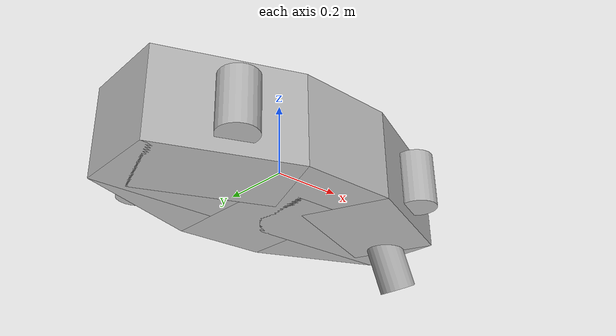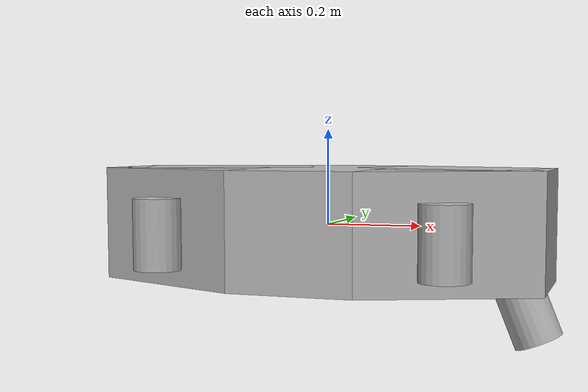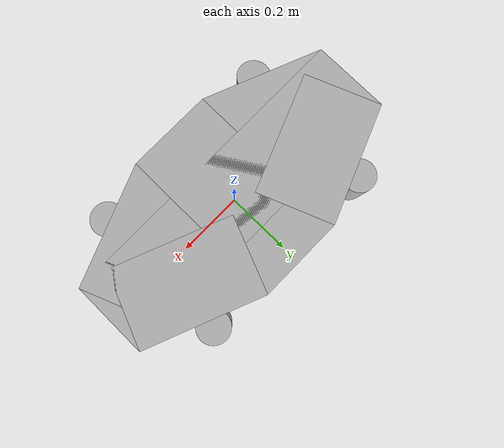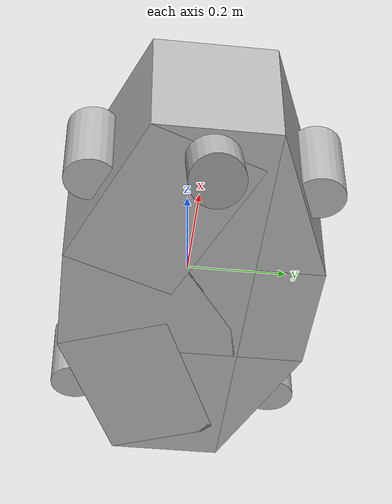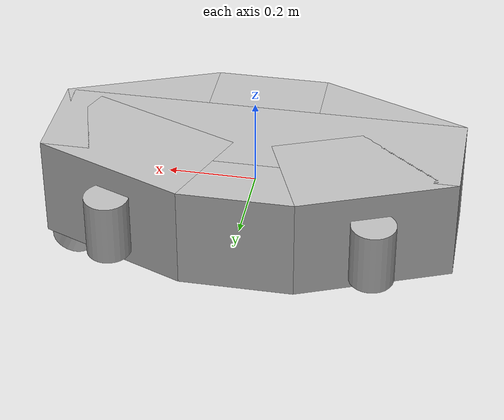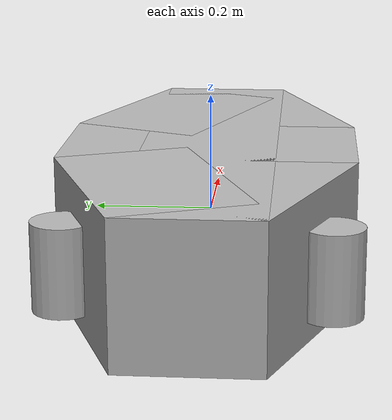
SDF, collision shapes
<sdf version='1.6'>
  <model name='robosimian'>
    <link name='base_link'>
      <pose frame=''>0 0 0 0 -0 0</pose>
      <inertial>
        <pose frame=''>-0.00082 -0.00206 -0.0218 3.14159 -0 0</pose>
        <mass>40</mass>
        <inertia>
          <ixx>0.24897</ixx>
          <ixy>0</ixy>
          <ixz>0</ixz>
          <iyy>0.70323</iyy>
          <iyz>0.00182</iyz>
          <izz>0.77256</izz>
        </inertia>
      </inertial>
      <collision name='base_link_collision'>
        <pose frame=''>0 0 0 3.14159 -0 0</pose>
        <geometry>
          <box>
            <size>0.257 0.5 0.238</size>
          </box>
        </geometry>
      </collision>
      <collision name='base_link_collision_1'>
        <pose frame=''>0 0 0 3.14159 -0 0</pose>
        <geometry>
          <box>
            <size>0.93 0.23 0.238</size>
          </box>
        </geometry>
      </collision>
      <collision name='base_link_collision_2'>
        <pose frame=''>0.25393 0.075769 0 3.14159 -0 -0.38153</pose>
        <geometry>
          <box>
            <size>0.36257 0.23 0.238</size>
          </box>
        </geometry>
      </collision>
      <collision name='base_link_collision_3'>
        <pose frame=''>-0.25393 0.075769 0 3.14159 -0 0.38153</pose>
        <geometry>
          <box>
            <size>0.36257 0.23 0.238</size>
          </box>
        </geometry>
      </collision>
      <collision name='base_link_collision_4'>
        <pose frame=''>0.25393 -0.075769 0 3.14159 -0 0.38153</pose>
        <geometry>
          <box>
            <size>0.36257 0.23 0.238</size>
          </box>
        </geometry>
      </collision>
      <collision name='base_link_collision_5'>
        <pose frame=''>-0.25393 -0.075769 0 3.14159 -0 -0.38153</pose>
        <geometry>
          <box>
            <size>0.36257 0.23 0.238</size>
          </box>
        </geometry>
      </collision>
      <collision name='base_link_collision_6'>
        <pose frame=''>0.41705 0 -0.15864 3.14159 -0.383972 0</pose>
        <geometry>
          <cylinder>
            <length>0.144</length>
            <radius>0.05</radius>
          </cylinder>
        </geometry>
      </collision>
      <collision name='base_link_fixed_joint_lump__limb1_link0_collision_7'>
        <pose frame=''>0.29326 -0.2094 -0.0115 3.1415 -0 -3.13159</pose>
        <geometry>
          <cylinder>
            <length>0.145</length>
            <radius>0.05</radius>
          </cylinder>
        </geometry>
      </collision>
      <collision name='base_link_fixed_joint_lump__limb2_link0_collision_8'>
        <pose frame=''>-0.29326 -0.2094 -0.0115 3.1415 -0 -3.13159</pose>
        <geometry>
          <cylinder>
            <length>0.145</length>
            <radius>0.05</radius>
          </cylinder>
        </geometry>
      </collision>
      <collision name='base_link_fixed_joint_lump__limb3_link0_collision_9'>
        <pose frame=''>-0.29326 0.2094 -0.0115 3.1415 -0 0</pose>
        <geometry>
          <cylinder>
            <length>0.145</length>
            <radius>0.05</radius>
          </cylinder>
        </geometry>
      </collision>
      <collision name='base_link_fixed_joint_lump__limb4_link0_collision_10'>
        <pose frame=''>0.29326 0.2094 -0.0115 3.1415 -0 0</pose>
        <geometry>
          <cylinder>
            <length>0.145</length>
            <radius>0.05</radius>
          </cylinder>
        </geometry>
      </collision>
      <visual name='base_link_visual'>
        <pose frame=''>0 0 0 3.14159 -0 0</pose>
        <geometry>
          <mesh>
            <scale>1 1 1</scale>
            <uri>stl_0_3/robosim_chassis.stl</uri>
          </mesh>
        </geometry>
      </visual>
      <visual name='base_link_fixed_joint_lump__limb1_link0_visual_1'>
        <pose frame=''>0.29326 -0.2094 -0.0365 3.14159 1.57079 0.009997</pose>
        <geometry>
          <mesh>
            <scale>1 1 1</scale>
            <uri>stl_0_3/robosim_fts.stl</uri>
          </mesh>
        </geometry>
      </visual>
      <visual name='base_link_fixed_joint_lump__limb2_link0_visual_2'>
        <pose frame=''>-0.29326 -0.2094 -0.0365 3.14159 1.57079 0.009997</pose>
        <geometry>
          <mesh>
            <scale>1 1 1</scale>
            <uri>stl_0_3/robosim_fts.stl</uri>
          </mesh>
        </geometry>
      </visual>
      <visual name='base_link_fixed_joint_lump__limb3_link0_visual_3'>
        <pose frame=''>-0.29326 0.2094 -0.0365 3.14159 1.57079 3.14159</pose>
        <geometry>
          <mesh>
            <scale>1 1 1</scale>
            <uri>stl_0_3/robosim_fts.stl</uri>
          </mesh>
        </geometry>
      </visual>
      <visual name='base_link_fixed_joint_lump__limb4_link0_visual_4'>
        <pose frame=''>0.29326 0.2094 -0.0365 3.14159 1.57079 3.14159</pose>
        <geometry>
          <mesh>
            <scale>1 1 1</scale>
            <uri>stl_0_3/robosim_fts.stl</uri>
          </mesh>
        </geometry>
      </visual>
    </link>
  </model>
</sdf>
